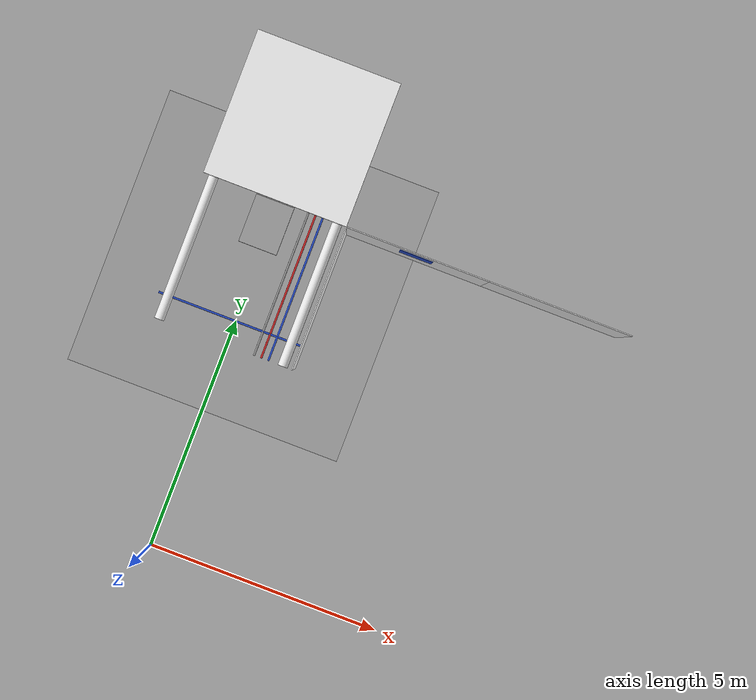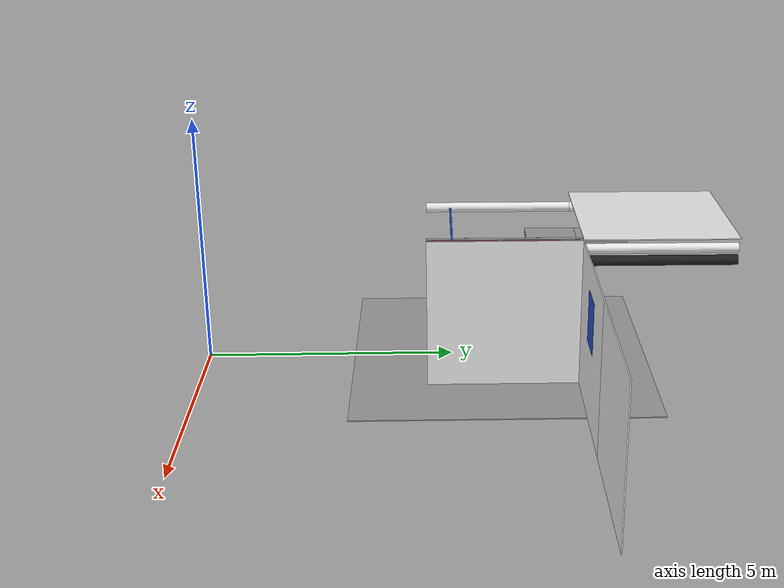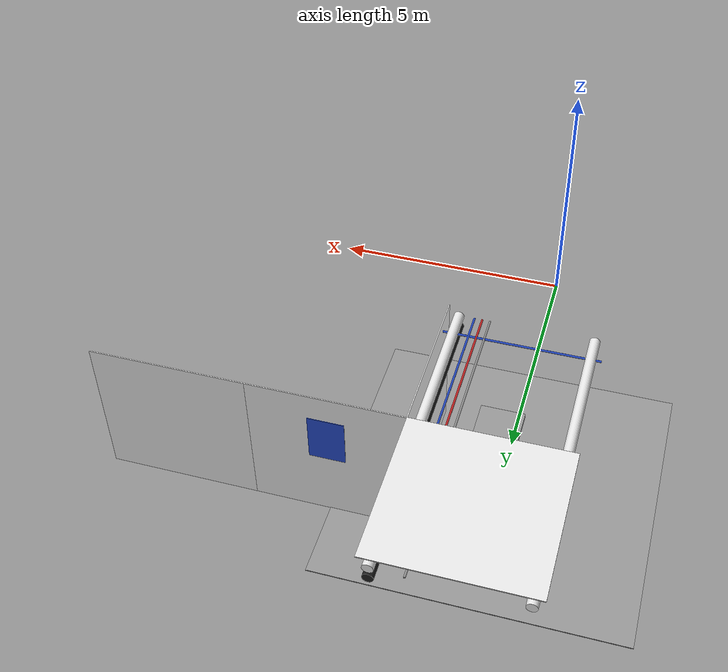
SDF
<sdf version="1.6">
 <world name="default">
  <model name="wall_front_0_2_0_3">
   <static>1</static>
   <pose>1.5 6.0 1.5 0.0 0.0 -1.57</pose>
   <link name="link">
    <collision name="collision"><geometry><box><size>3.0 0.02 3.0</size></box></geometry></collision>
    <visual name="visual">
     <material>
      <script><name>Gazebo/White</name><uri>file://media/materials/scripts/gazebo.material</uri></script>
     </material>
     <geometry><box><size>3.0 0.02 3.0</size></box></geometry>
    </visual>
   </link>
  </model>
  <model name="ceiling_1_0_2_1_3">
   <pose>0.0 7.0 2.55 0.0 0.0 0.0</pose>
   <link name="link_1">
    <visual name="visual">
     <geometry><box><size>0.8 1 0.1</size></box></geometry>
     <material>
      <script><uri>file://media/materials/scripts/gazebo.material</uri><name>Gazebo/Grey</name></script>
     </material>
    </visual>
    <collision name="collision"><geometry><box><size>0.8 1 0.1</size></box></geometry></collision>
   </link>
   <static>1</static>
  </model>
  <model name="blue_pipe_right_0_2_0_3">
   <static>1</static>
   <pose>0.0 6.0 2.76 0.0 0.0 -1.57</pose>
   <link name="link_0">
    <visual name="visual">
     <pose>1 0 0 1.57 0 0</pose>
     <geometry><cylinder><radius>0.02</radius><length>3.0</length></cylinder></geometry>
     <material>
      <script><uri>file://media/materials/scripts/gazebo.material</uri><name>Gazebo/Blue</name></script>
     </material>
    </visual>
    <collision name="collision">
     <pose>1 0 0 1.57 0 0</pose>
     <geometry><cylinder><radius>0.02</radius><length>3.0</length></cylinder></geometry>
    </collision>
   </link>
  </model>
  <model name="white_pipe_left_1_0_2_0_3">
   <static>1</static>
   <pose>0.0 6.0 2.76 0.0 0.0 0.0</pose>
   <link name="link_0">
    <visual name="visual">
     <pose>-1.3 0 0 1.57 0 0</pose>
     <geometry><cylinder><radius>0.1</radius><length>3.0</length></cylinder></geometry>
     <material>
      <script><uri>file://media/materials/scripts/gazebo.material</uri><name>Gazebo/White</name></script>
     </material>
    </visual>
    <collision name="collision">
     <pose>-1.3 0 0 1.57 0 0</pose>
     <geometry><cylinder><radius>0.1</radius><length>3.0</length></cylinder></geometry>
    </collision>
   </link>
  </model>
  <model name="white_pipe_right_1_0_2_0_3">
   <static>1</static>
   <pose>0.0 6.0 2.76 0.0 0.0 0.0</pose>
   <link name="link_0">
    <visual name="visual">
     <pose>1.3 0 0 1.57 0 0</pose>
     <geometry><cylinder><radius>0.1</radius><length>3.0</length></cylinder></geometry>
     <material>
      <script><uri>file://media/materials/scripts/gazebo.material</uri><name>Gazebo/White</name></script>
     </material>
    </visual>
    <collision name="collision">
     <pose>1.3 0 0 1.57 0 0</pose>
     <geometry><cylinder><radius>0.1</radius><length>3.0</length></cylinder></geometry>
    </collision>
   </link>
  </model>
  <model name="black_pipe_right_1_0_2_0_3">
   <static>1</static>
   <pose>0.0 6.0 2.76 0.0 0.0 0.0</pose>
   <link name="link_0">
    <visual name="visual">
     <pose>1.3 0 -0.25 1.57 0 0</pose>
     <geometry><cylinder><radius>0.1</radius><length>3.0</length></cylinder></geometry>
     <material>
      <script><uri>file://media/materials/scripts/gazebo.material</uri><name>Gazebo/Black</name></script>
     </material>
    </visual>
    <collision name="collision">
     <pose>1.3 0 -0.25 1.57 0 0</pose>
     <geometry><cylinder><radius>0.1</radius><length>3.0</length></cylinder></geometry>
    </collision>
   </link>
  </model>
  <model name="grey_pipe_right_1_0_2_0_3">
   <static>1</static>
   <pose>0.0 6.0 2.76 0.0 0.0 0.0</pose>
   <link name="link_0">
    <visual name="visual">
     <pose>0.7 0 0 1.57 0 0</pose>
     <geometry><cylinder><radius>0.02</radius><length>3.0</length></cylinder></geometry>
     <material>
      <script><uri>file://media/materials/scripts/gazebo.material</uri><name>Gazebo/Grey</name></script>
     </material>
    </visual>
    <collision name="collision">
     <pose>0.7 0 0 1.57 0 0</pose>
     <geometry><cylinder><radius>0.02</radius><length>3.0</length></cylinder></geometry>
    </collision>
   </link>
  </model>
  <model name="red_pipe_right_1_0_2_0_3">
   <static>1</static>
   <pose>0.0 6.0 2.76 0.0 0.0 0.0</pose>
   <link name="link_0">
    <visual name="visual">
     <pose>0.85 0 0 1.57 0 0</pose>
     <geometry><cylinder><radius>0.02</radius><length>3.0</length></cylinder></geometry>
     <material>
      <script><uri>file://media/materials/scripts/gazebo.material</uri><name>Gazebo/Red</name></script>
     </material>
    </visual>
    <collision name="collision">
     <pose>0.85 0 0 1.57 0 0</pose>
     <geometry><cylinder><radius>0.02</radius><length>3.0</length></cylinder></geometry>
    </collision>
   </link>
  </model>
  <model name="blue_pipe_right_1_0_2_0_3">
   <static>1</static>
   <pose>0.0 6.0 2.76 0.0 0.0 0.0</pose>
   <link name="link_0">
    <visual name="visual">
     <pose>1 0 0 1.57 0 0</pose>
     <geometry><cylinder><radius>0.02</radius><length>3.0</length></cylinder></geometry>
     <material>
      <script><uri>file://media/materials/scripts/gazebo.material</uri><name>Gazebo/Blue</name></script>
     </material>
    </visual>
    <collision name="collision">
     <pose>1 0 0 1.57 0 0</pose>
     <geometry><cylinder><radius>0.02</radius><length>3.0</length></cylinder></geometry>
    </collision>
   </link>
  </model>
  <model name="wall_bottom_0_2_0_3">
   <static>1</static>
   <pose>0.0 6.0 0.0 0.0 0.0 -1.57</pose>
   <link name="link">
    <collision name="collision"><geometry><box><size>6.0 6.0 0.02</size></box></geometry></collision>
    <visual name="visual">
     <material>
      <script><name>Gazebo/Grey</name><uri>file://media/materials/scripts/gazebo.material</uri></script>
     </material>
     <geometry><box><size>6.0 6.0 0.02</size></box></geometry>
    </visual>
   </link>
  </model>
  <model name="wall_top_0_3_0_2">
   <static>1</static>
   <pose>0.0 9.0 3.0 1.57 0.0 0.0</pose>
   <link name="link">
    <collision name="collision"><geometry><box><size>3.0 0.02 3.0</size></box></geometry></collision>
    <visual name="visual">
     <material>
      <script><name>Gazebo/White</name><uri>file://media/materials/scripts/gazebo.material</uri></script>
     </material>
     <geometry><box><size>3.0 0.02 3.0</size></box></geometry>
    </visual>
   </link>
  </model>
  <model name="ceiling_1_0_3_0_2">
   <pose>0.0 8.0 2.55 0.0 0.0 0.0</pose>
   <link name="link_1">
    <visual name="visual">
     <geometry><box><size>0.8 1 0.1</size></box></geometry>
     <material>
      <script><uri>file://media/materials/scripts/gazebo.material</uri><name>Gazebo/Grey</name></script>
     </material>
    </visual>
    <collision name="collision"><geometry><box><size>0.8 1 0.1</size></box></geometry></collision>
   </link>
   <static>1</static>
  </model>
  <model name="white_pipe_left_0_3_0_2">
   <static>1</static>
   <pose>0.0 9.0 2.76 0.0 0.0 0.0</pose>
   <link name="link_0">
    <visual name="visual">
     <pose>-1.3 0 0 1.57 0 0</pose>
     <geometry><cylinder><radius>0.1</radius><length>3.0</length></cylinder></geometry>
     <material>
      <script><uri>file://media/materials/scripts/gazebo.material</uri><name>Gazebo/White</name></script>
     </material>
    </visual>
    <collision name="collision">
     <pose>-1.3 0 0 1.57 0 0</pose>
     <geometry><cylinder><radius>0.1</radius><length>3.0</length></cylinder></geometry>
    </collision>
   </link>
  </model>
  <model name="white_pipe_right_0_3_0_2">
   <static>1</static>
   <pose>0.0 9.0 2.76 0.0 0.0 0.0</pose>
   <link name="link_0">
    <visual name="visual">
     <pose>1.3 0 0 1.57 0 0</pose>
     <geometry><cylinder><radius>0.1</radius><length>3.0</length></cylinder></geometry>
     <material>
      <script><uri>file://media/materials/scripts/gazebo.material</uri><name>Gazebo/White</name></script>
     </material>
    </visual>
    <collision name="collision">
     <pose>1.3 0 0 1.57 0 0</pose>
     <geometry><cylinder><radius>0.1</radius><length>3.0</length></cylinder></geometry>
    </collision>
   </link>
  </model>
  <model name="black_pipe_right_0_3_0_2">
   <static>1</static>
   <pose>0.0 9.0 2.76 0.0 0.0 0.0</pose>
   <link name="link_0">
    <visual name="visual">
     <pose>1.3 0 -0.25 1.57 0 0</pose>
     <geometry><cylinder><radius>0.1</radius><length>3.0</length></cylinder></geometry>
     <material>
      <script><uri>file://media/materials/scripts/gazebo.material</uri><name>Gazebo/Black</name></script>
     </material>
    </visual>
    <collision name="collision">
     <pose>1.3 0 -0.25 1.57 0 0</pose>
     <geometry><cylinder><radius>0.1</radius><length>3.0</length></cylinder></geometry>
    </collision>
   </link>
  </model>
  <model name="grey_pipe_right_0_3_0_2">
   <static>1</static>
   <pose>0.0 9.0 2.76 0.0 0.0 0.0</pose>
   <link name="link_0">
    <visual name="visual">
     <pose>0.7 0 0 1.57 0 0</pose>
     <geometry><cylinder><radius>0.02</radius><length>3.0</length></cylinder></geometry>
     <material>
      <script><uri>file://media/materials/scripts/gazebo.material</uri><name>Gazebo/Grey</name></script>
     </material>
    </visual>
    <collision name="collision">
     <pose>0.7 0 0 1.57 0 0</pose>
     <geometry><cylinder><radius>0.02</radius><length>3.0</length></cylinder></geometry>
    </collision>
   </link>
  </model>
  <model name="wall_right_1_3_0_1">
   <static>1</static>
   <pose>3.0 7.5 1.5 0.0 0.0 0.0</pose>
   <link name="link">
    <collision name="collision"><geometry><box><size>3.0 0.02 3.0</size></box></geometry></collision>
    <visual name="visual">
     <material>
      <script><name>Gazebo/White</name><uri>file://media/materials/scripts/gazebo.material</uri></script>
     </material>
     <geometry><box><size>3.0 0.02 3.0</size></box></geometry>
    </visual>
   </link>
  </model>
  <model name="panel_1_3_0_1">
   <static>1</static>
   <pose>3.0 7.5 1.95 0.0 0.0 -1.57</pose>
   <link name="link">
    <collision name="collision"><geometry><box><size>0.04 0.7 1</size></box></geometry></collision>
    <visual name="visual">
     <material>
      <script><name>Gazebo/Blue</name><uri>file://media/materials/scripts/gazebo.material</uri></script>
     </material>
     <geometry><box><size>0.04 0.7 1</size></box></geometry>
    </visual>
   </link>
  </model>
  <model name="wall_right_2_3_0_1">
   <static>1</static>
   <pose>6.0 7.5 1.5 0.0 0.0 0.0</pose>
   <link name="link">
    <collision name="collision"><geometry><box><size>3.0 0.02 3.0</size></box></geometry></collision>
    <visual name="visual">
     <material>
      <script><name>Gazebo/White</name><uri>file://media/materials/scripts/gazebo.material</uri></script>
     </material>
     <geometry><box><size>3.0 0.02 3.0</size></box></geometry>
    </visual>
   </link>
  </model>
 </world>
</sdf>
